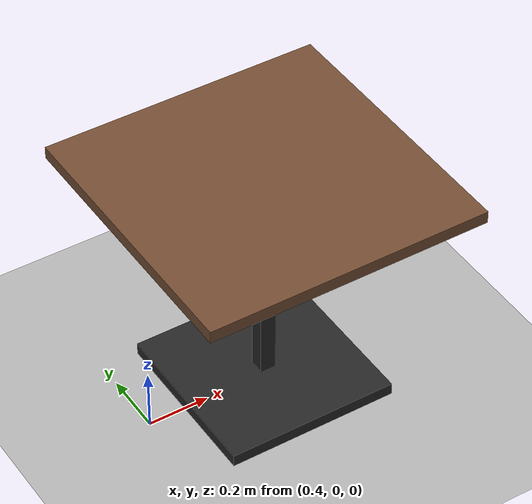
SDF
<?xml version="1.0"?>
<sdf version="1.7">
  <world name="default">
    <gravity>0 0 -9.8</gravity>

    <plugin filename="gz-sim-physics-system" name="gz::sim::systems::Physics"/>
    <plugin filename="gz-sim-user-commands-system" name="gz::sim::systems::UserCommands"/>
    <plugin filename="gz-sim-scene-broadcaster-system" name="gz::sim::systems::SceneBroadcaster"/>
    <plugin filename="gz-sim-sensors-system" name="gz::sim::systems::Sensors">
      <render_engine>ogre2</render_engine>
    </plugin>

    <light name="sun" type="directional">
      <cast_shadows>true</cast_shadows>
      <pose>0 0 10 0 0 0</pose>
      <diffuse>0.8 0.8 0.8 1</diffuse>
      <specular>0.2 0.2 0.2 1</specular>
      <attenuation>
        <range>1000</range>
        <constant>0.9</constant>
        <linear>0.01</linear>
        <quadratic>0.001</quadratic>
      </attenuation>
      <direction>-0.5 0.1 -0.9</direction>
    </light>

    <model name="ground_plane">
      <static>true</static>
      <link name="link">
        <collision name="collision">
          <geometry>
            <plane>
              <normal>0 0 1</normal>
              <size>100 100</size>
            </plane>
          </geometry>
        </collision>
        <visual name="visual">
          <geometry>
            <plane>
              <normal>0 0 1</normal>
              <size>100 100</size>
            </plane>
          </geometry>
          <material>
            <ambient>0.7 0.7 0.7 1</ambient>
            <diffuse>0.7 0.7 0.7 1</diffuse>
          </material>
        </visual>
      </link>
    </model>

    <model name="work_table">
      <static>true</static>
      <pose>0.8 0.0 0.0 0 0 0</pose>
      <link name="link">
        <collision name="table_top">
          <pose>0 0 0.755 0 0 0</pose>
          <geometry>
            <box>
              <size>0.913 0.913 0.04</size>
            </box>
          </geometry>
        </collision>
        <collision name="table_leg">
          <pose>0 0 0.37 0 0 0</pose>
          <geometry>
            <box>
              <size>0.05 0.05 0.74</size>
            </box>
          </geometry>
        </collision>
        <collision name="table_base">
          <pose>0 0 0.02 0 0 0</pose>
          <geometry>
            <box>
              <size>0.56 0.56 0.04</size>
            </box>
          </geometry>
        </collision>
        <visual name="table_top_visual">
          <pose>0 0 0.755 0 0 0</pose>
          <geometry>
            <box>
              <size>0.913 0.913 0.04</size>
            </box>
          </geometry>
          <material>
            <ambient>0.45 0.30 0.20 1</ambient>
            <diffuse>0.45 0.30 0.20 1</diffuse>
          </material>
        </visual>
        <visual name="table_leg_visual">
          <pose>0 0 0.37 0 0 0</pose>
          <geometry>
            <box>
              <size>0.05 0.05 0.74</size>
            </box>
          </geometry>
          <material>
            <ambient>0.15 0.15 0.15 1</ambient>
            <diffuse>0.15 0.15 0.15 1</diffuse>
          </material>
        </visual>
        <visual name="table_base_visual">
          <pose>0 0 0.02 0 0 0</pose>
          <geometry>
            <box>
              <size>0.56 0.56 0.04</size>
            </box>
          </geometry>
          <material>
            <ambient>0.15 0.15 0.15 1</ambient>
            <diffuse>0.15 0.15 0.15 1</diffuse>
          </material>
        </visual>
      </link>
    </model>
  </world>
</sdf>
